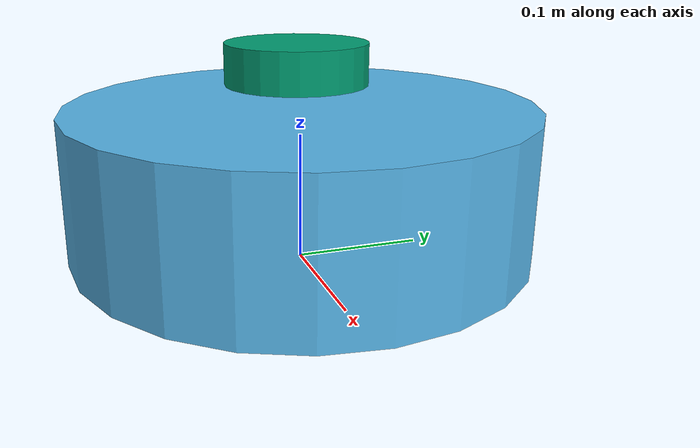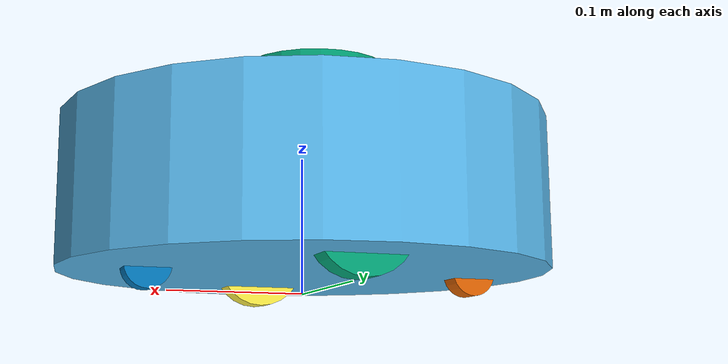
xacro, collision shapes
<?xml version="1.0"?>
<robot name="kobuki_standalone"
       xmlns:sensor="http://playerstage.sourceforge.net/gazebo/xmlschema/#sensor"
       xmlns:controller="http://playerstage.sourceforge.net/gazebo/xmlschema/#controller"
       xmlns:interface="http://playerstage.sourceforge.net/gazebo/xmlschema/#interface"
       xmlns:xacro="http://ros.org/wiki/xacro">

  <!-- Defines the kobuki component tag. -->
  <xacro:include filename="$(find toktak_description)/urdf/kobuki.urdf.xacro" />
  <kobuki/>
</robot>

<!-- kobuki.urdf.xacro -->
<robot name="kobuki"
  xmlns:xacro="http://ros.org/wiki/xacro">
  <xacro:include filename="$(find toktak_description)/urdf/common_properties.urdf.xacro"/>
  <xacro:include filename="$(find toktak_description)/urdf/kobuki_gazebo.urdf.xacro"/>

  <!-- Kobuki -->
  <xacro:macro name="kobuki">
    <link name="base_footprint"/>
    <joint name="base_joint" type="fixed">
      <origin xyz="0 0 0.0102" rpy="0 0 0" />
      <parent link="base_footprint"/>
      <child link="base_link" />
    </joint>
    <link name="base_link">
      <visual>
        <geometry>
          <!-- new mesh -->
          <mesh filename="package://toktak_description/meshes/main_body.dae" />
        </geometry>
        <origin xyz="0.001 0 0.05199" rpy="0 0 0"/>
      </visual>
      <collision name="base">
        <geometry>
          <cylinder length="0.10938" radius="0.178"/>
        </geometry>
        <origin xyz="0.0 0 0.05949" rpy="0 0 0"/>
      </collision>
      <inertial>
        <!-- COM experimentally determined -->
        <origin xyz="0.01 0 0"/>
        <mass value="2.4"/>
        <!-- 2.4/2.6 kg for small/big battery pack -->
        <inertia ixx="0.019995" ixy="0.0" ixz="0.0" iyy="0.019995" iyz="0.0" izz="0.03675" />
      </inertial>
    </link>

    <joint name="wheel_left_joint" type="continuous">
      <parent link="base_link"/>
      <child link="wheel_left_link"/>
      <origin xyz="0.00 ${0.23/2} 0.0250" rpy="${-M_PI/2} 0 0"/>
      <axis xyz="0 0 1"/>
    </joint>
    <link name="wheel_left_link">
      <visual>
        <geometry>
          <mesh filename="package://toktak_description/meshes/wheel.dae"/>
        </geometry>
        <origin xyz="0 0 0" rpy="0 0 0"/>
      </visual>
      <collision>
        <geometry>
          <cylinder length="0.0206" radius="0.035"/>
        </geometry>
        <origin rpy="0 0 0" xyz="0 0 0"/>
      </collision>
      <inertial>
        <mass value="0.01" />
        <origin xyz="0 0 0" />
        <inertia ixx="0.001" ixy="0.0" ixz="0.0" iyy="0.001" iyz="0.0" izz="0.001" />
      </inertial>
    </link>

    <joint name="wheel_right_joint" type="continuous">
      <parent link="base_link"/>
      <child link="wheel_right_link"/>
      <origin xyz="0.00 -${0.23/2} 0.0250" rpy="${-M_PI/2} 0 0"/>
      <axis xyz="0 0 1"/>
    </joint>
    <link name="wheel_right_link">
      <visual>
        <geometry>
          <mesh filename="package://toktak_description/meshes/wheel.dae"/>
        </geometry>
        <origin xyz="0 0 0" rpy="0 0 0"/>
      </visual>
      <collision>
        <geometry>
          <cylinder length="0.0206" radius="0.035"/>
        </geometry>
        <origin rpy="0 0 0" xyz="0 0 0"/>
      </collision>
      <inertial>
        <mass value="0.01" />
        <origin xyz="0 0 0" />
        <inertia ixx="0.001" ixy="0.0" ixz="0.0" iyy="0.001" iyz="0.0" izz="0.001" />
      </inertial>
    </link>

    <joint name="caster_front_joint" type="fixed">
      <parent link="base_link"/>
      <child link="caster_front_link"/>
      <origin xyz="0.115 0.0 0.007" rpy="${-M_PI/2} 0 0"/>
    </joint>
    <link name="caster_front_link">
      <collision>
        <geometry>
          <cylinder length="0.0176" radius="0.017"/>
        </geometry>
        <origin rpy="0 0 0" xyz="0 0 0"/>
      </collision>
      <inertial>
        <mass value="0.01" />
        <origin xyz="0 0 0" />
        <inertia ixx="0.001" ixy="0.0" ixz="0.0" iyy="0.001" iyz="0.0" izz="0.001" />
      </inertial>
    </link>

    <joint name="caster_back_joint" type="fixed">
      <parent link="base_link"/>
      <child link="caster_back_link"/>
      <origin xyz="-0.135 0.0 0.009" rpy="${-M_PI/2} 0 0"/>
    </joint>
    <link name="caster_back_link">
      <collision>
        <geometry>
          <cylinder length="0.0176" radius="0.017"/>
        </geometry>
        <origin rpy="0 0 0" xyz="0 0 0"/>
      </collision>
      <inertial>
        <mass value="0.01" />
        <origin xyz="0 0 0" />
        <inertia ixx="0.001" ixy="0.0" ixz="0.0" iyy="0.001" iyz="0.0" izz="0.001" />
      </inertial>
    </link>

    <!-- Kobuki's sensors -->
    <joint name="gyro_joint" type="fixed">
      <axis xyz="0 1 0"/>
      <origin xyz="0.056 0.062 0.0202" rpy="0 0 0"/>
      <parent link="base_link"/>
      <child link="gyro_link"/>
    </joint>
    <link name="gyro_link">
      <inertial>
        <mass value="0.001"/>
        <origin xyz="0 0 0" rpy="0 0 0"/>
        <inertia ixx="0.0001" ixy="0" ixz="0" iyy="0.000001" iyz="0" izz="0.0001"/>
      </inertial>
    </link>

    <joint name="cliff_sensor_left_joint" type="fixed">
      <origin xyz="0.08734 0.13601 0.0214" rpy="0 ${M_PI/2} 0" />
      <parent link="base_link"/>
      <child link="cliff_sensor_left_link" />
    </joint>
    <link name="cliff_sensor_left_link">
      <inertial>
        <mass value="0.0001" />
        <origin xyz="0 0 0" />
        <inertia ixx="0.0001" ixy="0.0" ixz="0.0" iyy="0.0001" iyz="0.0" izz="0.0001" />
      </inertial>
    </link>

    <joint name="cliff_sensor_right_joint" type="fixed">
      <origin xyz="0.085 -0.13601 0.0214" rpy="0 ${M_PI/2} 0" />
      <parent link="base_link"/>
      <child link="cliff_sensor_right_link" />
    </joint>
    <link name="cliff_sensor_right_link">
      <inertial>
        <mass value="0.0001" />
        <origin xyz="0 0 0" />
        <inertia ixx="0.0001" ixy="0.0" ixz="0.0" iyy="0.0001" iyz="0.0" izz="0.0001" />
      </inertial>
    </link>

    <joint name="cliff_sensor_front_joint" type="fixed">
      <origin xyz="0.156 0.00 0.0214" rpy="0 ${M_PI/2} 0" />
      <parent link="base_link"/>
      <child link="cliff_sensor_front_link" />
    </joint>
    <link name="cliff_sensor_front_link">
      <inertial>
        <mass value="0.0001" />
        <origin xyz="0 0 0" />
        <inertia ixx="0.0001" ixy="0.0" ixz="0.0" iyy="0.0001" iyz="0.0" izz="0.0001" />
      </inertial>

    </link>

    <!-- Kobuki Gazebo simulation details -->
    <kobuki_sim/>

    <!-- Add LiDAR  -->
    <joint name="scan_joint" type="fixed">
      <parent link="base_link"/>
      <child link="sensor_laser_link"/>
      <origin xyz="-0.025 0 0.15" rpy="0 0 0"/>
    </joint>

    <link name="sensor_laser_link">
      <visual>
        <origin xyz="0 0 0.0" rpy="0 0 0"/>
        <geometry>
          <mesh filename="package://toktak_description/meshes/sensors/lds.stl" scale="0.001 0.001 0.001"/>
        </geometry>
        <xacro:property name="material_red" />
      </visual>

      <collision>
        <origin xyz="0.015 0 -0.0065" rpy="0 0 0"/>
        <geometry>
          <cylinder length="0.0315" radius="0.055"/>
        </geometry>
      </collision>

      <inertial>
        <mass value="0.114" />
        <origin xyz="0 0 0" />
        <inertia ixx="0.001" ixy="0.0" ixz="0.0" iyy="0.001" iyz="0.0" izz="0.001" />
      </inertial>
    </link>

  </xacro:macro>
</robot>
